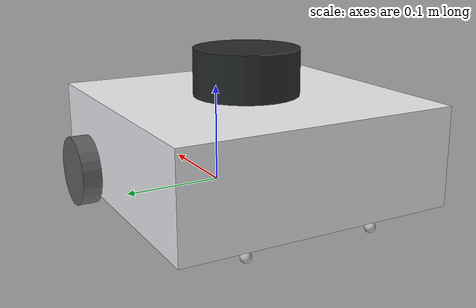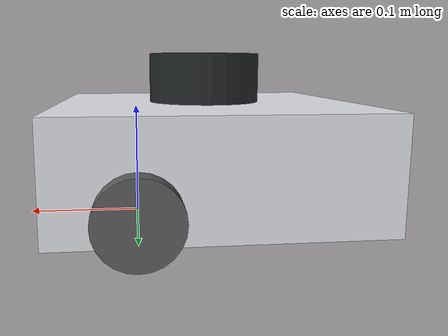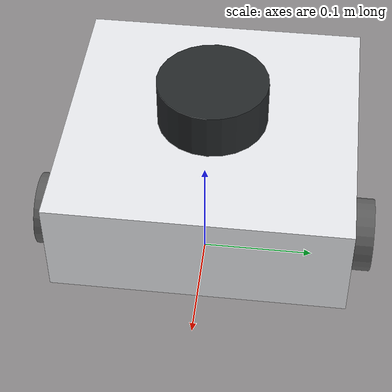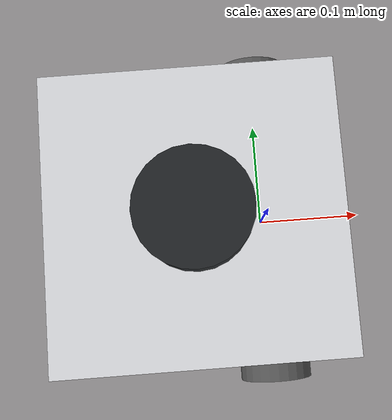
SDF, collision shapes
<?xml version="1.0" ?>
<sdf version='1.8' xmlns:xacro="http://ros.org/wiki/xacro">
  <model name="turtlebot3_waffle" canonical_link='base_link'>

    <!-- Robot Base -->
    <link name="base_link">
      <must_be_base_link>true</must_be_base_link>
      <visual name="base_link_visual">
        <pose>-0.064 0 0.01 0 0 0</pose>
        <geometry>
          <mesh>
            <uri>package://ros_gz_description/models/turtlebot3/meshes/waffle_base.dae</uri>
            <scale>0.001 0.001 0.001</scale>
          </mesh>
        </geometry>
        <material>
          <diffuse> 0.921568627 0.925490196 0.941176471 1</diffuse>
          <ambient> 0.921568627 0.925490196 0.941176471 1</ambient>
          <specular>0.921568627 0.925490196 0.941176471 1</specular>
        </material>
      </visual>
      <collision name="base_link_collision">
        <pose>-0.064 0 0.057 0 0 0</pose>
        <geometry>
          <box>
            <size>0.266 0.266 0.094</size>
          </box>
        </geometry>
      </collision>
      <inertial>
        <pose>-0.006056477959657685 0 0.01926442051009627 0 0 0</pose>
        <mass>1.4969096</mass>
        <inertia>
          <ixx>0.01330968881636598</ixx>
          <ixy>-4.7576583000000001e-05</ixy>
          <ixz>0.00091064575365546732</ixz>
          <iyy>0.013913324787183729</iyy>
          <iyz>-3.5422299000000002e-06</iyz>
          <izz>0.018379012970817749</izz>
        </inertia>
      </inertial>
    </link>

    <!-- Robot Footprint -->
    <link name='base_footprint'>
      <pose relative_to="base_joint"/>
    </link>

    <joint name='base_joint' type='fixed'>
      <parent>base_link</parent>
      <child>base_footprint</child>
      <pose relative_to="base_link"/>
    </joint>

    <!-- Wheel left -->
    <link name='wheel_left_link'>
      <pose relative_to='wheel_left_joint'/>
      <visual name='wheel_left_link_visual'>
        <pose>0 0 0 1.57 0 0</pose>
        <geometry>
          <mesh>
            <scale>0.001 0.001 0.001</scale>
            <uri>package://ros_gz_description/models/turtlebot3/meshes/tire.dae</uri>
          </mesh>
        </geometry>
        <material>
          <diffuse>0.375 0.375 0.375 1</diffuse>
          <ambient>0.375 0.375 0.375 1</ambient>
        </material>
      </visual>
      <collision name='wheel_left_link_collision'>
        <pose>0 0 0 0 0 0</pose>
        <geometry>
          <cylinder>
            <length>0.017999999999999999</length>
            <radius>0.033000000000000002</radius>
          </cylinder>
        </geometry>
      </collision>
      <inertial>
        <pose>0 0 0 0 0 0</pose>
        <mass>0.02849894</mass>
        <inertia>
          <ixx>1.117558e-05</ixx>
          <ixy>-4.2369783000000002e-11</ixy>
          <ixz>-5.9381719000000002e-09</ixz>
          <iyy>1.1192413e-05</iyy>
          <iyz>-1.4400107e-11</iyz>
          <izz>2.0712558000000001e-05</izz>
        </inertia>
      </inertial>
    </link>

    <joint name='wheel_left_joint' type='revolute'>
      <parent>base_link</parent>
      <child>wheel_left_link</child>
      <pose relative_to='base_link'>0 0.144 0.033 -1.57 0 0</pose>
      <axis>
        <xyz>0 0 1</xyz>
        <limit>
          <lower>-inf</lower>
          <upper>inf</upper>
        </limit>
        <dynamics>
          <spring_reference>0</spring_reference>
          <spring_stiffness>0</spring_stiffness>
        </dynamics>
      </axis>
    </joint>

    <!-- Wheel right -->
    <link name='wheel_right_link'>
      <pose relative_to='wheel_right_joint'/>
      <visual name='wheel_right_link_visual'>
        <pose>0 0 0 1.57 0 0</pose>
        <geometry>
          <mesh>
            <scale>0.001 0.001 0.001</scale>
            <uri>package://ros_gz_description/models/turtlebot3/meshes/tire.dae</uri>
          </mesh>
        </geometry>
        <material>
          <diffuse>0.375 0.375 0.375 1</diffuse>
          <ambient>0.375 0.375 0.375 1</ambient>
        </material>
      </visual>
      <collision name='wheel_right_link_collision'>
        <pose>0 0 0 0 0 0</pose>
        <geometry>
          <cylinder>
            <length>0.017999999999999999</length>
            <radius>0.033000000000000002</radius>
          </cylinder>
        </geometry>
      </collision>
      <inertial>
        <pose>0 0 0 0 0 0</pose>
        <mass>0.02849894</mass>
        <inertia>
          <ixx>1.117558e-05</ixx>
          <ixy>-4.2369783000000002e-11</ixy>
          <ixz>-5.9381719000000002e-09</ixz>
          <iyy>1.1192413e-05</iyy>
          <iyz>-1.4400107e-11</iyz>
          <izz>2.0712558000000001e-05</izz>
        </inertia>
      </inertial>
    </link>

    <joint name='wheel_right_joint' type='revolute'>
      <parent>base_link</parent>
      <child>wheel_right_link</child>
      <pose relative_to='base_link'>0 -0.144 0.033 -1.57 0 0</pose>
      <axis>
        <xyz>0 0 1</xyz>
        <limit>
          <lower>-inf</lower>
          <upper>inf</upper>
        </limit>
        <dynamics>
          <spring_reference>0</spring_reference>
          <spring_stiffness>0</spring_stiffness>
        </dynamics>
      </axis>
    </joint>

    <!-- Caster back right -->
    <link name='caster_back_right_link'>
      <pose relative_to="caster_back_right_joint"/>

      <collision name='collision'>
        <geometry>
          <sphere>
            <radius>0.005000</radius>
          </sphere>
        </geometry>
        <surface>
          <contact>
            <ode>
              <soft_cfm>0</soft_cfm>
              <soft_erp>0.2</soft_erp>
              <kp>1e+5</kp>
              <kd>1</kd>
              <max_vel>0.01</max_vel>
              <min_depth>0.001</min_depth>
            </ode>
          </contact>
        </surface>
      </collision>
      <inertial>
        <mass>0.001</mass>
        <inertia>
          <ixx>0.00001</ixx>
          <ixy>0.000</ixy>
          <ixz>0.000</ixz>
          <iyy>0.00001</iyy>
          <iyz>0.000</iyz>
          <izz>0.00001</izz>
        </inertia>
      </inertial>
    </link>

    <joint name='caster_back_right_joint' type='ball'>
      <parent>base_link</parent>
      <child>caster_back_right_link</child>
      <pose relative_to="base_link">-0.177 -0.064 -0.004 -1.57 0 0</pose>
    </joint>

    <!-- Caster back left -->
    <link name='caster_back_left_link'>
      <pose relative_to="caster_back_left_joint"/>
      <collision name='collision'>
        <geometry>
          <sphere>
            <radius>0.005000</radius>
          </sphere>
        </geometry>
        <surface>
          <contact>
            <ode>
              <soft_cfm>0</soft_cfm>
              <soft_erp>0.2</soft_erp>
              <kp>1e+5</kp>
              <kd>1</kd>
              <max_vel>0.01</max_vel>
              <min_depth>0.001</min_depth>
            </ode>
          </contact>
        </surface>
      </collision>
      <inertial>
        <mass>0.001</mass>
        <inertia>
          <ixx>0.00001</ixx>
          <ixy>0.000</ixy>
          <ixz>0.000</ixz>
          <iyy>0.00001</iyy>
          <iyz>0.000</iyz>
          <izz>0.00001</izz>
        </inertia>
      </inertial>
    </link>

    <joint name='caster_back_left_joint' type='ball'>
      <parent>base_link</parent>
      <child>caster_back_left_link</child>
      <pose relative_to="base_link">-0.177 0.064 -0.004 -1.57 0 0</pose>
    </joint>

    <!-- IMU -->
    <link name="imu_link">
      <pose relative_to="imu_joint"/>
      <sensor name="imu_sensor" type="imu">
        <always_on>true</always_on>
        <update_rate>200</update_rate>
        <visualize>true</visualize>
        <topic>/turtlebot3_waffle/imu</topic>
        <ignition_frame_id>imu_link</ignition_frame_id>
        <imu>
          <angular_velocity>
            <x>
              <noise type="gaussian">
                <mean>0.0</mean>
                <stddev>2e-4</stddev>
              </noise>
            </x>
            <y>
              <noise type="gaussian">
                <mean>0.0</mean>
                <stddev>2e-4</stddev>
              </noise>
            </y>
            <z>
              <noise type="gaussian">
                <mean>0.0</mean>
                <stddev>2e-4</stddev>
              </noise>
            </z>
          </angular_velocity>
          <linear_acceleration>
            <x>
              <noise type="gaussian">
                <mean>0.0</mean>
                <stddev>1.7e-2</stddev>
              </noise>
            </x>
            <y>
              <noise type="gaussian">
                <mean>0.0</mean>
                <stddev>1.7e-2</stddev>
              </noise>
            </y>
            <z>
              <noise type="gaussian">
                <mean>0.0</mean>
                <stddev>1.7e-2</stddev>
              </noise>
            </z>
          </linear_acceleration>
        </imu>
      </sensor>
    </link>

    <joint name="imu_joint" type="fixed">
      <parent>base_link</parent>
      <child>imu_link</child>
      <pose relative_to="base_link">-0.032 0 0.068 0 0 0</pose>
    </joint>

    <!-- LIDAR -->
    <link name="lidar_link">
      <pose relative_to='lidar_joint'/>
      <collision name="lidar_link_collision">
        <geometry>
          <cylinder>
            <radius>0.0508</radius>
            <length>0.055</length>
          </cylinder>
        </geometry>
      </collision>
      <visual name="lidar_link_visual">
        <geometry>
          <mesh>
            <uri>package://ros_gz_description/models/turtlebot3/meshes/lds.dae</uri>
            <scale>0.001 0.001 0.001</scale>
          </mesh>
        </geometry>
        <material>
          <diffuse> 0.145098039 0.156862745 0.164705882 1</diffuse>
          <ambient> 0.145098039 0.156862745 0.164705882 1</ambient>
          <specular>0.145098039 0.156862745 0.164705882 1</specular>
        </material>
      </visual>
      <inertial>
        <inertia>
          <ixx>0.001</ixx>
          <ixy>0</ixy>
          <ixz>0</ixz>
          <iyy>0.001</iyy>
          <iyz>0</iyz>
          <izz>0.001</izz>
        </inertia>
        <mass>0.114</mass>
      </inertial>
      <sensor name="gpu_lidar" type="gpu_lidar">
        <pose>-0.064 0 0.121 0 0 0</pose>
        <topic>/turtlebot3_waffle/scan</topic>
        <ignition_frame_id>turtlebot3_waffle/lidar_link</ignition_frame_id>
        <update_rate>5</update_rate>
        <ray>
          <scan>
            <horizontal>
              <samples>360</samples>
              <resolution>1</resolution>
              <min_angle>0</min_angle>
              <max_angle>6.28</max_angle>
            </horizontal>
          </scan>
          <range>
            <min>0.120000</min>
            <max>20.0</max>
            <resolution>0.015000</resolution>
          </range>
          <noise>
            <type>gaussian</type>
            <mean>0.0</mean>
            <stddev>0.01</stddev>
          </noise>
        </ray>
        <always_on>true</always_on>
        <visualize>1</visualize>
      </sensor>
    </link>

    <joint name="lidar_joint" type="fixed">
      <parent>base_link</parent>
      <child>lidar_link</child>
      <pose relative_to="base_link">-0.064 0 0.121 0 0 0</pose>
    </joint>

    <!-- Camera -->

    <link name="camera_link">
      <pose relative_to='camera_joint'/>
      <inertial>
        <inertia>
          <ixx>0.001</ixx>
          <ixy>0.000</ixy>
          <ixz>0.000</ixz>
          <iyy>0.001</iyy>
          <iyz>0.000</iyz>
          <izz>0.001</izz>
        </inertia>
        <mass>0.035</mass>
      </inertial>
      <sensor name="camera" type="camera">
        <always_on>true</always_on>
        <visualize>true</visualize>
        <update_rate>30</update_rate>
        <topic>/turtlebot3_waffle/camera/image_raw</topic>
        <camera_info_topic>/turtlebot3_waffle/camera/camera_info</camera_info_topic>
        <ignition_frame_id>camera_frame</ignition_frame_id>
        <camera name="intel_realsense_r200">
          <horizontal_fov>1.02974</horizontal_fov>
          <image>
            <width>1920</width>
            <height>1080</height>
            <format>R8G8B8</format>
          </image>
          <clip>
            <near>0.02</near>
            <far>300</far>
          </clip>
          <noise>
            <type>gaussian</type>
            <mean>0.0</mean>
            <stddev>0.007</stddev>
          </noise>
        </camera>
      </sensor>
    </link>

    <joint name="camera_joint" type="fixed">
      <parent>base_link</parent>
      <child>camera_link</child>
      <pose relative_to="base_link">0.069 -0.047 0.107 0 0 0</pose>
      <axis>
        <xyz>0 0 1</xyz>
      </axis>
    </joint>

    <!-- IMU -->
    <plugin filename="gz-sim-imu-system" name="gz::sim::systems::Imu"/>

    <!-- Global odometer -->
    <plugin
      filename="ignition-gazebo-odometry-publisher-system"
      name="ignition::gazebo::systems::OdometryPublisher">
      <odom_publish_frequency>50</odom_publish_frequency>
      <odom_topic>/turtlebot3_waffle/odom</odom_topic>
      <odom_frame>turtlebot3_waffle/odom</odom_frame>
      <robot_base_frame>turtlebot3_waffle</robot_base_frame>
    </plugin>

    <!-- Differential drive -->
    <plugin
      filename="ignition-gazebo-diff-drive-system"
      name="ignition::gazebo::systems::DiffDrive">
      <left_joint>wheel_left_joint</left_joint>
      <right_joint>wheel_right_joint</right_joint>
      <wheel_separation>0.287</wheel_separation>
      <wheel_radius>0.033</wheel_radius>
      <topic>cmd_vel</topic>
      <child_frame_id>base_link</child_frame_id>
    </plugin>

    <!-- Joint state publisher -->
    <plugin
      filename="ignition-gazebo-joint-state-publisher-system"
      name="ignition::gazebo::systems::JointStatePublisher">
    </plugin>

    <!-- Pose publisher -->

    <plugin
        filename="ignition-gazebo-pose-publisher-system"
        name="ignition::gazebo::systems::PosePublisher">
        <publish_link_pose>true</publish_link_pose>
        <use_pose_vector_msg>true</use_pose_vector_msg>
        <static_publisher>true</static_publisher>
        <static_update_frequency>1</static_update_frequency>
      </plugin>

  </model>
</sdf>
